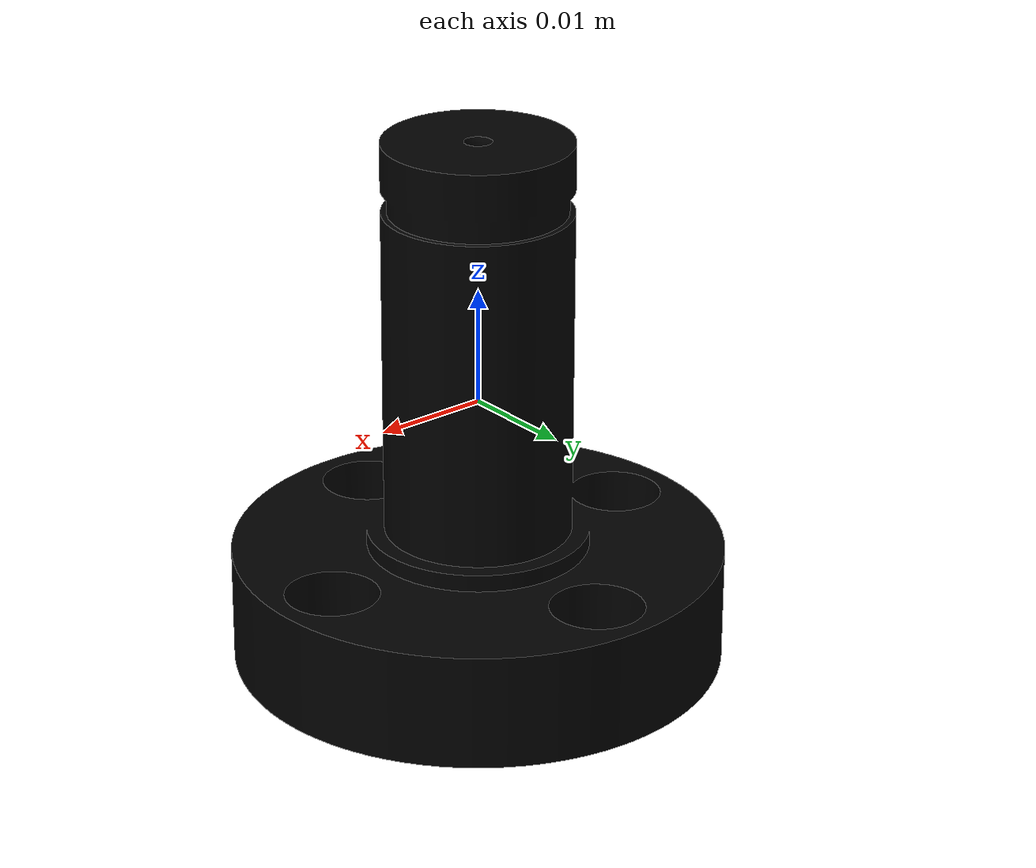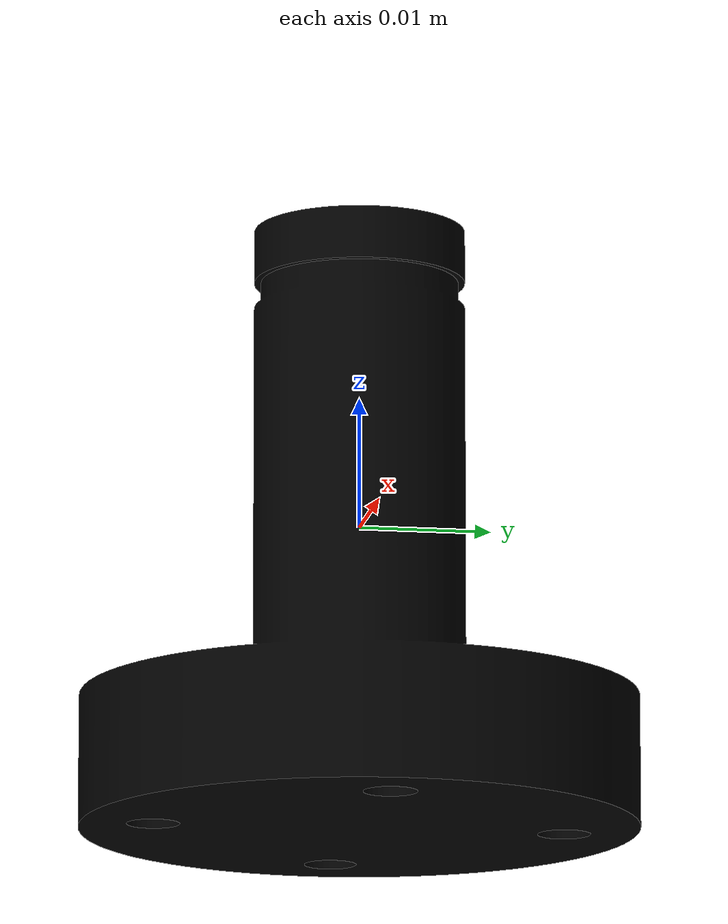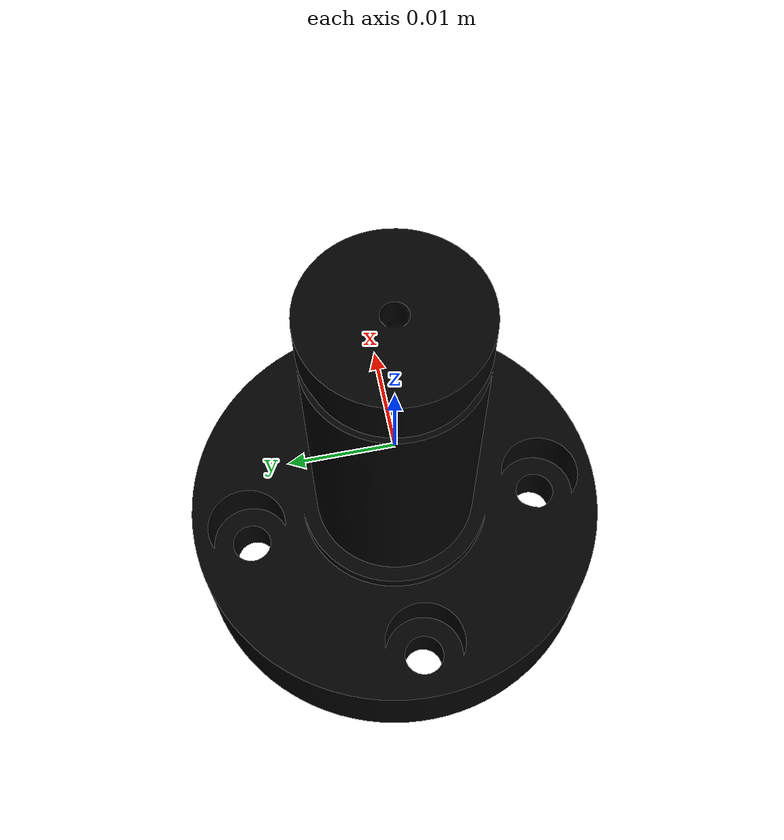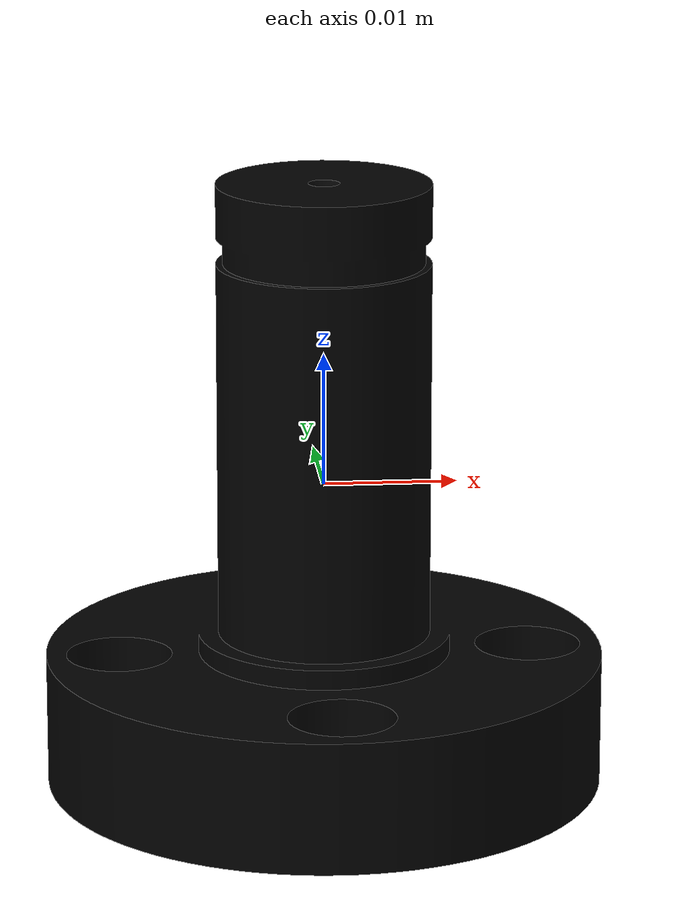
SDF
<?xml version="1.0" ?>
<sdf version="1.5">
    <model name="workpiece">
        <link name="link">
            <gravity>true</gravity>
            <inertial>
                <mass>0.15</mass>
                <inertia>
                    <ixx>0.00003</ixx>
                    <iyy>0.00003</iyy>
                    <izz>0.00002</izz>
                </inertia>
            </inertial>
            <collision name="collision1">
                <geometry>
                    <cylinder>
                        <radius>0.008</radius>
                        <length>0.046</length>
                    </cylinder>
                </geometry>
                <surface>
                    <friction>
                        <ode>
                        <mu>5.0</mu>
                        <mu2>5.0</mu2>
                        </ode>
                    </friction>
                    <contact>
                        <ode>
                            <kp>1000000.0</kp>
                            <kd>1.0</kd>
                            <min_depth>0.001</min_depth>
                        </ode>
                    </contact>
                </surface>
            </collision>
            <collision name="collision2">
                <pose>0 0 -0.018 0 0 0</pose>
                <geometry>
                    <cylinder>
                        <radius>0.021</radius>
                        <length>0.01</length>
                    </cylinder>
                </geometry>
            </collision>
            <visual name="visual">
                <pose>0 0 -0.023 0 0 0</pose>
                <geometry>
                    <mesh><uri>visual/workpiece.dae</uri></mesh>
                </geometry>
            </visual>

        </link>
    </model>
</sdf>
